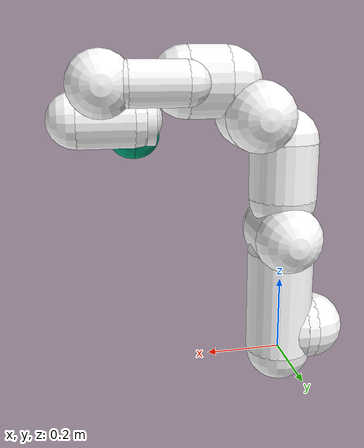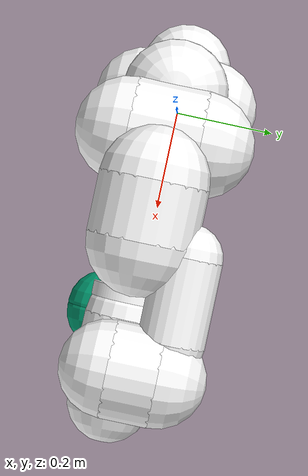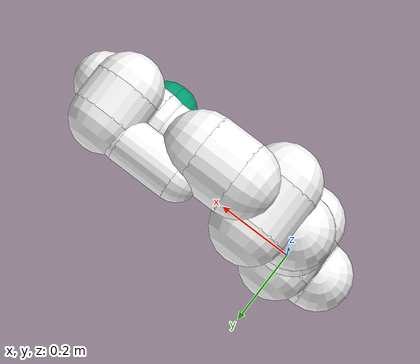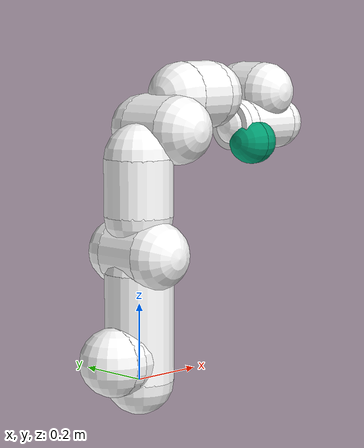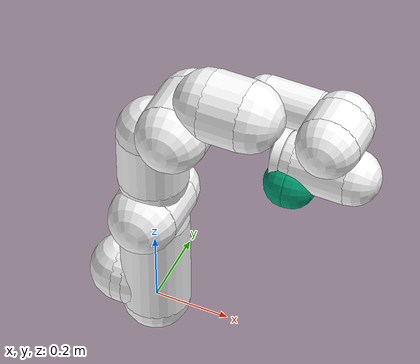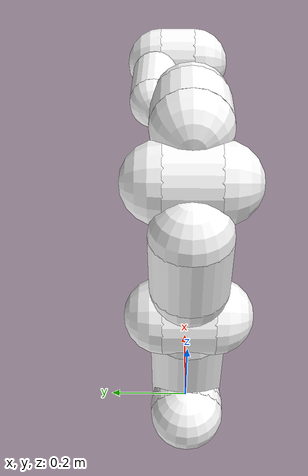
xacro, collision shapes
<?xml version="1.0" encoding="utf-8"?>
<robot xmlns:xacro="http://www.ros.org/wiki/xacro" name="panda_foot">

  <xacro:arg name="gazebo" default="true"/>

  <xacro:include filename="@CMAKE_BINARY_DIR@/xacro/main.xacro">
  </xacro:include>
  <xacro:include filename="@CMAKE_BINARY_DIR@/xacro/panda.xacro">
  </xacro:include>
  <xacro:include filename="@CMAKE_BINARY_DIR@/xacro/foot.xacro"/>

  <xacro:main connected_to='world'/>
  <xacro:panda xyz="0 0 0" connected_to='main_link' safety_distance="0.03"/>
  <xacro:foot ns="panda" rpy="0 0 ${-pi/4}" connected_to="panda_link8"/>
</robot>

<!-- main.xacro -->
<robot xmlns:xacro="http://www.ros.org/wiki/xacro" name="panda_main_part">
  <xacro:macro name="main" params="arm_id:='main' package_name:='franka_description' connected_to:='' xyz:='0 0 0' rpy:='0 0 0'">
    <xacro:unless value="${not connected_to}">
      <link name="${connected_to}"/>
      <joint name="${arm_id}_joint_${connected_to}" type="fixed">
        <parent link="${connected_to}"/>
        <child link="${arm_id}_link"/>
        <origin rpy="${rpy}" xyz="${xyz}"/>
      </joint>
    </xacro:unless>

    <xacro:arg name="gazebo" default="true"/>
    <xacro:if value="$(arg gazebo)">
      <!-- Gazebo Tags -->
      <xacro:include filename="main.gazebo.xacro"/>
    </xacro:if>

    <link name="${arm_id}_link">
    </link>

  </xacro:macro>
</robot>

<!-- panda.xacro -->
<robot xmlns:xacro="http://www.ros.org/wiki/xacro" name="panda_manipulatorA_part">
  <!-- safety_distance: Minimum safety distance in [m] by which the collision volumes are expanded and which is enforced during robot motions -->
  <!-- arm_id: Namespace of the panda arm. Serves to differentiate between arms in case of multiple instances. -->
  <xacro:macro name="panda" params="arm_id:='panda' package_name:='franka_description' connected_to:='' xyz:='0 0 0' rpy:='0 0 0' safety_distance:=0">
    <xacro:unless value="${not connected_to}">
      <joint name="${arm_id}_joint_${connected_to}" type="fixed">
        <parent link="${connected_to}"/>
        <child link="${arm_id}_link0"/>
        <origin rpy="${rpy}" xyz="${xyz}"/>
      </joint>
    </xacro:unless>

    <xacro:arg name="gazebo" default="true"/>
    <xacro:if value="$(arg gazebo)">
      <!-- Gazebo Tags -->
      <xacro:include filename="panda.gazebo.xacro"/>
    </xacro:if>

    <link name="${arm_id}_link0">
      <inertial>
        <mass value="2.92" />
        <origin xyz="-0.025566 -2.88e-05 0.057332" rpy="0 0 0" />
        <inertia ixx="0.00782229414331" ixy="-1.56191622996e-05" ixz="-0.00126005738123" iyy="0.0109027971813" iyz="1.08233858202e-05" izz="0.0102355503949" />
      </inertial>
      <visual>
        <origin xyz="0 0 0" rpy="0 0 0"/>
        <geometry>
          <mesh filename="package://${package_name}/meshes/visual/link0.dae"/>
        </geometry>
        <material name="">
          <color rgba="1 1 1 1"/>
        </material>
      </visual>
      <collision>
        <origin xyz="-0.075 0 0.06" rpy="0 ${pi/2} 0"/>
        <geometry>
          <cylinder radius="${0.06+safety_distance}" length="0.03" />
        </geometry>
      </collision>
      <collision>
        <origin xyz="-0.06 0 0.06" rpy="0 0 0"/>
        <geometry>
          <sphere radius="${0.06+safety_distance}" />
        </geometry>
      </collision>
      <collision>
        <origin xyz="-0.09 0 0.06" rpy="0 0 0"/>
        <geometry>
          <sphere radius="${0.06+safety_distance}" />
        </geometry>
      </collision>
    </link>

    <link name="${arm_id}_link1">
      <inertial>
        <mass value="2.74" />
        <origin xyz="0 -0.0324958 -0.0675818" rpy="0 0 0" />
        <inertia ixx="0.0180416958283" ixy="0.0" ixz="0.0" iyy="0.0159136071891" iyz="0.0046758424612" izz="0.00620690827127" />
      </inertial>
      <visual>
        <origin xyz="0 0 0" rpy="0 0 0"/>
        <geometry>
          <mesh filename="package://${package_name}/meshes/visual/link1.dae"/>
        </geometry>
        <material name="">
          <color rgba="1 1 1 1"/>
        </material>
      </visual>
      <collision>
        <origin xyz="0 0 -0.1915" rpy="0 0 0"/>
        <geometry>
          <cylinder radius="${0.06+safety_distance}" length="0.2830" />
        </geometry>
      </collision>
      <collision>
        <origin xyz="0 0 -0.333" rpy="0 0 0"/>
        <geometry>
          <sphere radius="${0.06+safety_distance}" />
        </geometry>
      </collision>
      <collision>
        <origin xyz="0 0 -0.05" rpy="0 0 0"/>
        <geometry>
          <sphere radius="${0.06+safety_distance}" />
        </geometry>
      </collision>
    </link>

    <joint name="${arm_id}_joint1" type="revolute">
      <safety_controller k_position="100.0" k_velocity="40.0" soft_lower_limit="-2.8973" soft_upper_limit="2.8973"/>
      <origin rpy="0 0 0" xyz="0 0 0.333"/>
      <parent link="${arm_id}_link0"/>
      <child link="${arm_id}_link1"/>
      <axis xyz="0 0 1"/>
      <limit effort="87" lower="-2.8973" upper="2.8973" velocity="2.1750"/>
    </joint>

    <link name="${arm_id}_link2">
      <inertial>
        <mass value="2.74" />
        <origin xyz="0 -0.06861 0.0322285" rpy="0 0 0" />
        <inertia ixx="0.0182856182281" ixy="0.0" ixz="0.0" iyy="0.00621358421175" iyz="-0.00472844221905" izz="0.0161514346309" />
      </inertial>
      <visual>
        <origin xyz="0 0 0" rpy="0 0 0"/>
        <geometry>
          <mesh filename="package://${package_name}/meshes/visual/link2.dae"/>
        </geometry>
        <material name="">
          <color rgba="1 1 1 1"/>
        </material>
      </visual>
      <collision>
        <origin xyz="0 0 0" rpy="0 0 0"/>
        <geometry>
          <cylinder radius="${0.06+safety_distance}" length="0.12" />
        </geometry>
      </collision>
      <collision>
        <origin xyz="0 0 -0.06" rpy="0 0 0"/>
        <geometry>
          <sphere radius="${0.06+safety_distance}" />
        </geometry>
      </collision>
      <collision>
        <origin xyz="0 0 0.06" rpy="0 0 0"/>
        <geometry>
          <sphere radius="${0.06+safety_distance}" />
        </geometry>
      </collision>
    </link>

    <joint name="${arm_id}_joint2" type="revolute">
      <safety_controller k_position="100.0" k_velocity="40.0" soft_lower_limit="-1.7628" soft_upper_limit="1.7628"/>
      <origin rpy="${-pi/2} 0 0" xyz="0 0 0"/>
      <parent link="${arm_id}_link1"/>
      <child link="${arm_id}_link2"/>
      <axis xyz="0 0 1"/>
      <limit effort="87" lower="-1.7628" upper="1.7628" velocity="2.1750"/>
    </joint>

    <link name="${arm_id}_link3">
      <inertial>
        <mass value="2.38" />
        <origin xyz="0.0469893 0.0316374 -0.031704" rpy="0 0 0" />
        <inertia ixx="0.00771376630908" ixy="-0.00248490625138" ixz="-0.00332147581033" iyy="0.00989108008727" iyz="-0.00217796151484" izz="0.00811723558464" />
      </inertial>
      <visual>
        <origin xyz="0 0 0" rpy="0 0 0"/>
        <geometry>
          <mesh filename="package://${package_name}/meshes/visual/link3.dae"/>
        </geometry>
        <material name="">
          <color rgba="1 1 1 1"/>
        </material>
      </visual>
      <collision>
        <origin xyz="0 0 -0.145" rpy="0 0 0"/>
        <geometry>
          <cylinder radius="${0.06+safety_distance}" length="0.15" />
        </geometry>
      </collision>
      <collision>
        <origin xyz="0 0 -0.22" rpy="0 0 0"/>
        <geometry>
          <sphere radius="${0.06+safety_distance}" />
        </geometry>
      </collision>
      <collision>
        <origin xyz="0 0 -0.07" rpy="0 0 0"/>
        <geometry>
          <sphere radius="${0.06+safety_distance}" />
        </geometry>
      </collision>
    </link>

    <joint name="${arm_id}_joint3" type="revolute">
      <safety_controller k_position="100.0" k_velocity="40.0" soft_lower_limit="-2.8973" soft_upper_limit="2.8973"/>
      <origin rpy="${pi/2} 0 0" xyz="0 -0.316 0"/>
      <parent link="${arm_id}_link2"/>
      <child link="${arm_id}_link3"/>
      <axis xyz="0 0 1"/>
      <limit effort="87" lower="-2.8973" upper="2.8973" velocity="2.1750"/>
    </joint>

    <link name="${arm_id}_link4">
      <inertial>
        <mass value="2.38" />
        <origin xyz="-0.0360446 0.0336853 0.031882" rpy="0 0 0" />
        <inertia ixx="0.00799663881132" ixy="0.00347095570217" ixz="-0.00241222942995" iyy="0.00825390705278" iyz="0.00235774044121" izz="0.0102515004345" />
      </inertial>
      <visual>
        <origin xyz="0 0 0" rpy="0 0 0"/>
        <geometry>
          <mesh filename="package://${package_name}/meshes/visual/link4.dae"/>
        </geometry>
        <material name="">
          <color rgba="1 1 1 1"/>
        </material>
      </visual>
      <collision>
        <origin xyz="0 0 0" rpy="0 0 0"/>
        <geometry>
          <cylinder radius="${0.06+safety_distance}" length="0.12" />
        </geometry>
      </collision>
      <collision>
        <origin xyz="0 0 0.06" rpy="0 0 0"/>
        <geometry>
          <sphere radius="${0.06+safety_distance}" />
        </geometry>
      </collision>
      <collision>
        <origin xyz="0 0 -0.06" rpy="0 0 0"/>
        <geometry>
          <sphere radius="${0.06+safety_distance}" />
        </geometry>
      </collision>
    </link>

    <joint name="${arm_id}_joint4" type="revolute">
      <safety_controller k_position="100.0" k_velocity="40.0" soft_lower_limit="-3.0718" soft_upper_limit="-0.0698"/>
      <origin rpy="${pi/2} 0 0" xyz="0.0825 0 0"/>
      <parent link="${arm_id}_link3"/>
      <child link="${arm_id}_link4"/>
      <axis xyz="0 0 1"/>
      <limit effort="87" lower="-3.0718" upper="-0.0698" velocity="2.1750"/>
    </joint>

    <link name="${arm_id}_link5">
      <inertial>
        <mass value="2.74" />
        <origin xyz="0 0.0610427 -0.104176" rpy="0 0 0" />
        <inertia ixx="0.030371374513" ixy="6.50283587108e-07" ixz="-1.05129179916e-05" iyy="0.0288752887402" iyz="-0.00775653445787" izz="0.00444134056164" />
      </inertial>
      <visual>
        <origin xyz="0 0 0" rpy="0 0 0"/>
        <geometry>
          <mesh filename="package://${package_name}/meshes/visual/link5.dae"/>
        </geometry>
        <material name="">
          <color rgba="1 1 1 1"/>
        </material>
      </visual>
      <collision>
        <origin xyz="0 0 -0.26" rpy="0 0 0"/>
        <geometry>
          <cylinder radius="${0.06+safety_distance}" length="0.1" />
        </geometry>
      </collision>
      <collision>
        <origin xyz="0 0 -0.31" rpy="0 0 0"/>
        <geometry>
          <sphere radius="${0.06+safety_distance}" />
        </geometry>
      </collision>
      <collision>
        <origin xyz="0 0 -0.21" rpy="0 0 0"/>
        <geometry>
          <sphere radius="${0.06+safety_distance}" />
        </geometry>
      </collision>
      <collision>
        <origin xyz="0 0.08 -0.13" rpy="0 0 0"/>
        <geometry>
          <cylinder radius="${0.025+safety_distance}" length="0.14" />
        </geometry>
      </collision>
      <collision>
        <origin xyz="0 0.08 -0.06" rpy="0 0 0"/>
        <geometry>
          <sphere radius="${0.025+safety_distance}" />
        </geometry>
      </collision>
      <collision>
        <origin xyz="0 0.08 -0.20" rpy="0 0 0"/>
        <geometry>
          <sphere radius="${0.025+safety_distance}" />
        </geometry>
      </collision>
    </link>

    <joint name="${arm_id}_joint5" type="revolute">
      <safety_controller k_position="100.0" k_velocity="40.0" soft_lower_limit="-2.8973" soft_upper_limit="2.8973"/>
      <origin rpy="${-pi/2} 0 0" xyz="-0.0825 0.384 0"/>
      <parent link="${arm_id}_link4"/>
      <child link="${arm_id}_link5"/>
      <axis xyz="0 0 1"/>
      <limit effort="12" lower="-2.8973" upper="2.8973" velocity="2.6100"/>
    </joint>

    <link name="${arm_id}_link6">
      <inertial>
        <mass value="1.55" />
        <origin xyz="0.0510509 0.009108 0.0106343" rpy="0 0 0" />
        <inertia ixx="0.00303336450376" ixy="-0.000437276865508" ixz="0.000629257294877" iyy="0.00404479911567" iyz="0.000130472021025" izz="0.00558234286039" />
      </inertial>
      <visual>
        <origin xyz="0 0 0" rpy="0 0 0"/>
        <geometry>
          <mesh filename="package://${package_name}/meshes/visual/link6.dae"/>
        </geometry>
        <material name="">
          <color rgba="1 1 1 1"/>
        </material>
      </visual>
      <collision>
        <origin xyz="0 0 -0.03" rpy="0 0 0"/>
        <geometry>
          <cylinder radius="${0.05+safety_distance}" length="0.08" />
        </geometry>
      </collision>
      <collision>
        <origin xyz="0 0 0.01" rpy="0 0 0"/>
        <geometry>
          <sphere radius="${0.05+safety_distance}" />
        </geometry>
      </collision>
      <collision>
        <origin xyz="0 0 -0.07" rpy="0 0 0"/>
        <geometry>
          <sphere radius="${0.05+safety_distance}" />
        </geometry>
      </collision>
    </link>

    <joint name="${arm_id}_joint6" type="revolute">
      <safety_controller k_position="100.0" k_velocity="40.0" soft_lower_limit="-0.0175" soft_upper_limit="3.7525"/>
      <origin rpy="${pi/2} 0 0" xyz="0 0 0"/>
      <parent link="${arm_id}_link5"/>
      <child link="${arm_id}_link6"/>
      <axis xyz="0 0 1"/>
      <limit effort="12" lower="-0.0175" upper="3.7525" velocity="2.6100"/>
    </joint>

    <link name="${arm_id}_link7">
      <inertial>
        <mass value="0.54" />
        <origin xyz="0.0109695 0.0107965 0.0650411" rpy="0 0 0" />
        <inertia ixx="0.000888868887021" ixy="-0.00012239074652" ixz="3.98699829666e-05" iyy="0.000888001373233" iyz="-9.33825115206e-05" izz="0.0007176834609" />
      </inertial>
      <visual>
        <origin xyz="0 0 0" rpy="0 0 0"/>
        <geometry>
          <mesh filename="package://${package_name}/meshes/visual/link7.dae"/>
        </geometry>
        <material name="">
          <color rgba="1 1 1 1"/>
        </material>
      </visual>
      <collision>
        <origin xyz="0 0 0.01" rpy="0 0 0"/>
        <geometry>
          <cylinder radius="${0.04+safety_distance}" length="0.14" />
        </geometry>
      </collision>
      <collision>
        <origin xyz="0 0 0.08" rpy="0 0 0"/>
        <geometry>
          <sphere radius="${0.04+safety_distance}"  />
        </geometry>
      </collision>
      <collision>
        <origin xyz="0 0 -0.06" rpy="0 0 0"/>
        <geometry>
          <sphere radius="${0.04+safety_distance}"  />
        </geometry>
      </collision>
    </link>

    <joint name="${arm_id}_joint7" type="revolute">
      <safety_controller k_position="100.0" k_velocity="40.0" soft_lower_limit="-2.8973" soft_upper_limit="2.8973"/>
      <origin rpy="${pi/2} 0 0" xyz="0.088 0 0"/>
      <parent link="${arm_id}_link6"/>
      <child link="${arm_id}_link7"/>
      <axis xyz="0 0 1"/>
      <limit effort="12" lower="-2.8973" upper="2.8973" velocity="2.6100"/>
    </joint>

    <link name="${arm_id}_link8">
      <collision>
        <origin xyz="0.0424 0.0424 -0.0250" rpy="${pi} ${pi/2} ${pi/2}"/>
        <geometry>
          <cylinder radius="${0.03+safety_distance}"  length="0.01" />
        </geometry>
      </collision>
      <collision>
        <origin xyz="0.0424 0.0424 -0.02" rpy="0 0 0"/>
        <geometry>
          <sphere radius="${0.03+safety_distance}"  />
        </geometry>
      </collision>
      <collision>
        <origin xyz="0.0424 0.0424 -0.03" rpy="0 0 0"/>
        <geometry>
          <sphere radius="${0.03+safety_distance}"  />
        </geometry>
      </collision>
    </link>

    <joint name="${arm_id}_joint8" type="fixed">
      <origin rpy="0 0 0" xyz="0 0 0.107"/>
      <parent link="${arm_id}_link7"/>
      <child link="${arm_id}_link8"/>
      <axis xyz="0 0 0"/>
    </joint>

  </xacro:macro>
</robot>

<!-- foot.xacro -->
<robot xmlns:xacro="http://www.ros.org/wiki/xacro" name="panda_foot_part">
  <xacro:macro name="foot" params="connected_to:='' ns:='' rpy:='0 0 0' xyz:='0 0 0' ">
    <xacro:unless value="${connected_to == ''}">
      <joint name="${ns}_foot_joint" type="fixed">
        <parent link="${connected_to}"/>
        <child link="${ns}_foot"/>
        <origin xyz="${xyz}" rpy="${rpy}"/>
      </joint>
    </xacro:unless>

    <xacro:arg name="gazebo" default="true"/>
    <xacro:if value="$(arg gazebo)">
      <gazebo reference="${ns}_foot"/>
    </xacro:if>

    <link name="${ns}_foot">
      <inertial>
        <mass value="0.1" />
        <origin xyz="0 0 0.01" rpy="0 0 0" />
        <inertia ixx="0.001" ixy="0.0" ixz="0.0" iyy="0.001" iyz="0.0" izz="0.001" />
      </inertial>
      <visual>
        <origin xyz="${xyz}" rpy="0 0 0"/>
        <geometry>
          <mesh filename="file://@MESHES_DESTINATION@/foot.stl" />
        </geometry>
        <material name="">
          <color rgba="1 1 1 1"/>
        </material>
      </visual>
      <collision>
        <origin xyz="${xyz}" rpy="0 0 0"/>
        <geometry>
          <mesh filename="file://@MESHES_DESTINATION@/foot.stl" />
        </geometry>
      </collision>
    </link>
  </xacro:macro>
</robot>
